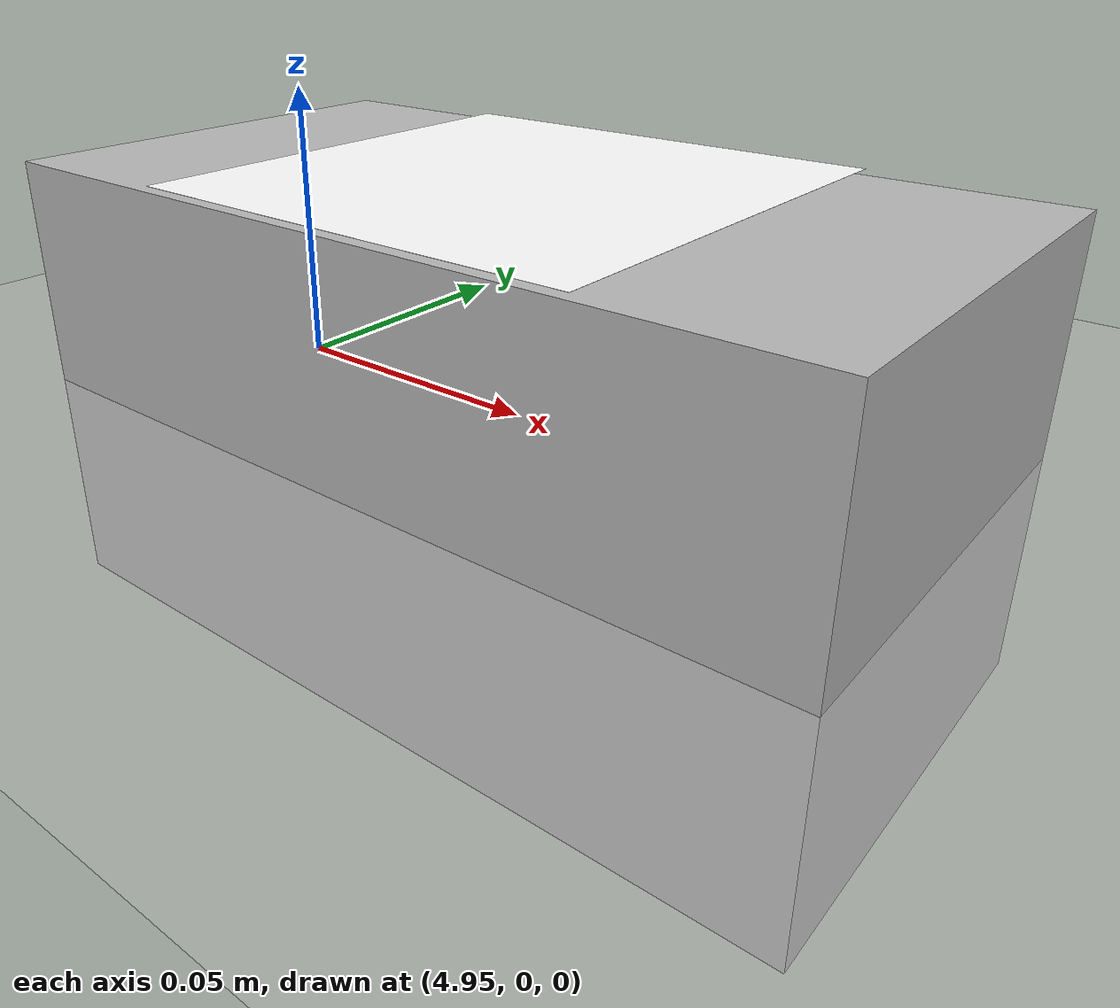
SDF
<?xml version="1.0" ?>
<sdf version="1.6">
  <world name="default">
    <!-- A global light source -->
    <include>
      <uri>model://sun</uri>
    </include>
    <!-- A ground plane -->
    <include>
      <uri>model://ground_plane</uri>
    </include>
    <include>
      <uri>model://asphalt_plane</uri>
    </include>

    <include>
      <uri>model://carga_util</uri>
      <pose>5 0 0 0 0 0</pose>
    </include>

    <physics name='default_physics' default='0' type='ode'>
      <gravity>0 0 -9.8066</gravity>
      <ode>
        <solver>
          <type>quick</type>
          <iters>50</iters>
          <sor>1.0</sor>
          <use_dynamic_moi_rescaling>0</use_dynamic_moi_rescaling>
        </solver>
        <constraints>
          <cfm>0</cfm>
          <erp>0.2</erp>
          <contact_max_correcting_vel>100</contact_max_correcting_vel>
          <contact_surface_layer>0.001</contact_surface_layer>
        </constraints>
      </ode>
      <max_step_size>0.004</max_step_size>
      <real_time_factor>1</real_time_factor>
      <real_time_update_rate>250</real_time_update_rate>
      <magnetic_field>6.0e-6 2.3e-5 -4.2e-5</magnetic_field>
    </physics>
  </world>
</sdf>

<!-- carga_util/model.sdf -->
<sdf version="1.5">
  <model name="carga_util">
    <pose>0 0 0.75  0 0 0</pose>
    <static>false</static>
    <link name="link">
      <inertial>
        <mass>0.2</mass>
        <inertia>
          <ixx>0.3</ixx>
          <ixy>0</ixy>
          <ixz>0</ixz>
          <iyy>0.3</iyy>
          <iyz>0</iyz>
          <izz>0.1</izz>
        </inertia>
      </inertial>
      <collision name="collision">
        <geometry>
          <box>
              <size>0.15 0.08 0.08</size>
          </box>
        </geometry>
	      <surface>
          <contact>
            <ode>
              <max_vel>0.1</max_vel>
              <min_depth>0.001</min_depth>
            </ode>
          </contact>
        </surface>
      </collision>
      <visual name="visual">
        <geometry>
           <box>
              <size>0.15 0.08 0.08</size>
          </box>
	      </geometry>
      </visual>
    </link>

    <link name='marker'>
      <pose relative_to='link'>0 0 0.041 0 0 0</pose>
      <visual name='visual'>
        <geometry>
          <box>
            <size>0.08 0.08 1e-5</size>
          </box>
        </geometry>
        <material>
          <script>
            <uri>model://carga_util/materials/scripts</uri>
            <uri>model://carga_util/materials/textures</uri>
            <name>ArucoVisualMarker2/Marker</name>
          </script>
          <ambient>1 1 1 1</ambient>
          <diffuse>1 1 1 1</diffuse>
          <specular>0 0 0 1</specular>
          <emissive>1 1 1 0</emissive>
          <shader type='vertex'>
            <normal_map>__default__</normal_map>
          </shader>
        </material>
        <pose frame=''>0 0 0 0 -0 0</pose>
        <cast_shadows>1</cast_shadows>
        <transparency>0</transparency>
      </visual>
      <collision name='collision'>
        <laser_retro>0</laser_retro>
        <max_contacts>10</max_contacts>
        <pose frame=''>0 0 0 0 -0 0</pose>
        <geometry>
          <box>
            <size>0.08 0.08 1e-05</size>
          </box>
        </geometry>
      </collision>
    </link>
    <joint name='market_joint' type='revolute'>
      <child>marker</child>
      <parent>link</parent>
      <axis>
        <xyz>0 0 1</xyz>
        <limit>
          <lower>0</lower>
          <upper>0</upper>
          <effort>10</effort>
          <velocity>-1</velocity>
        </limit>
      </axis>
    </joint>

    <link name='marker_pad'>
      <pose frame='marker'>0 0 -1e-5 0 -0 0</pose>
      <visual name='visual'>
        <geometry>
          <box>
            <size>0.08 0.08 1e-5</size>
          </box>
        </geometry>
        <material>
          <lighting>1</lighting>
          <script>
            <uri>file://media/materials/scripts/gazebo.material</uri>
            <name>Gazebo/White</name>
          </script>
          <ambient>0.3 0.3 0.3 1</ambient>
          <diffuse>0.7 0.7 0.7 1</diffuse>
          <specular>0.01 0.01 0.01 1</specular>
          <emissive>1 1 1 0</emissive>
          <shader type='vertex'>
            <normal_map>__default__</normal_map>
          </shader>
        </material>
        <cast_shadows>1</cast_shadows>
        <transparency>0</transparency>
      </visual>
      <collision name='collision'>
        <laser_retro>0</laser_retro>
        <max_contacts>10</max_contacts>
        <pose frame=''>0 0 0 0 -0 0</pose>
        <geometry>
          <box>
            <size>0.08 0.08 1e-5</size>
          </box>
        </geometry>
      </collision>
    </link>
    <joint name='marker_JOINT_marker_pad' type='revolute'>
      <parent>marker</parent>
      <child>marker_pad</child>
      <pose frame=''>0 0 0 0 -0 0</pose>
      <axis>
        <xyz>0 0 1</xyz>
        <limit>
          <upper>0</upper>
          <lower>0</lower>
        </limit>
      </axis>
    </joint>

  </model>
</sdf>
